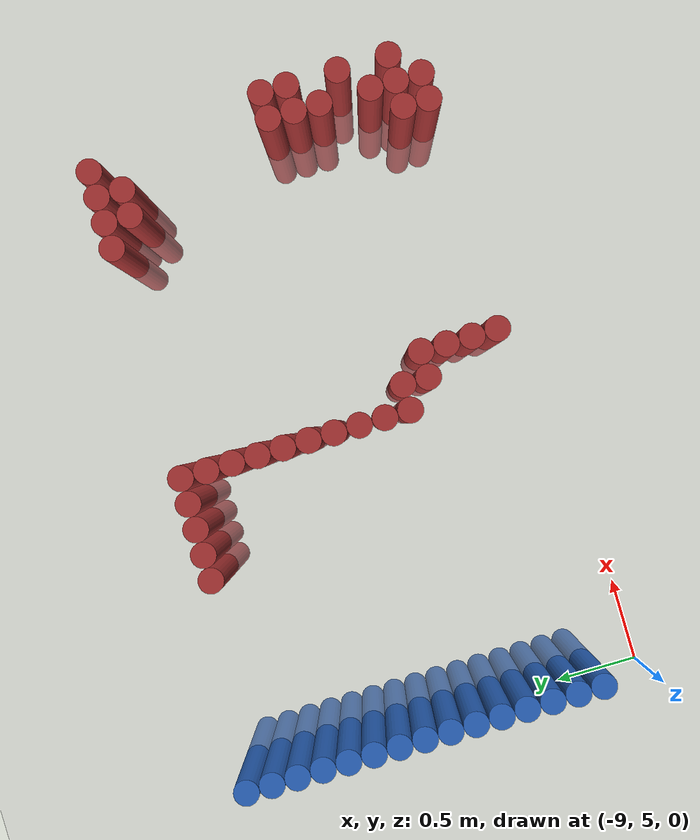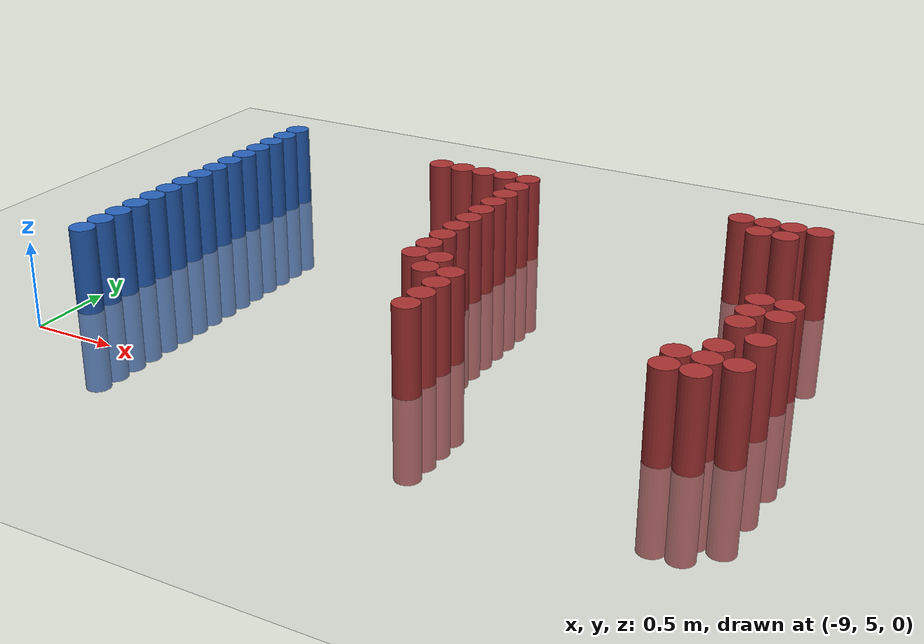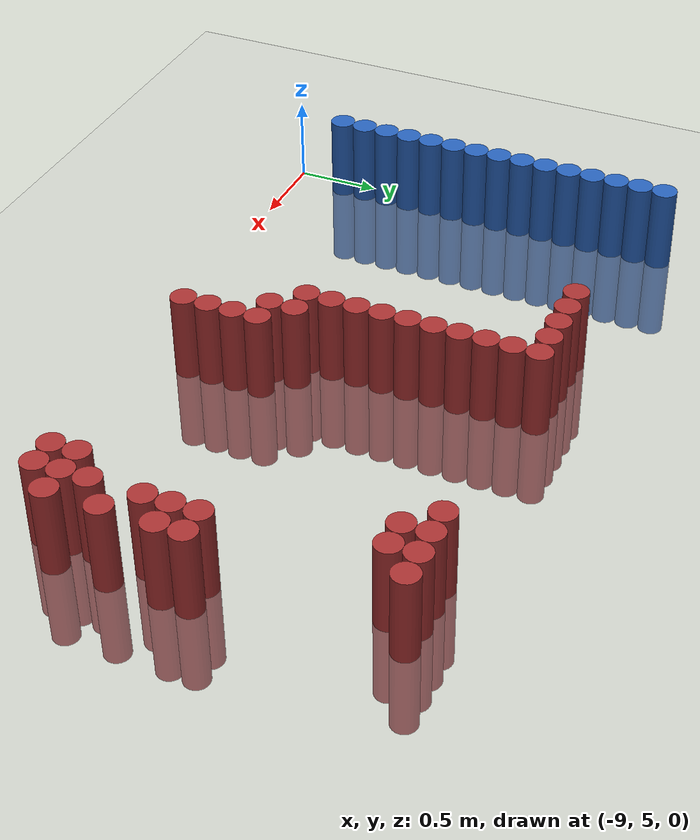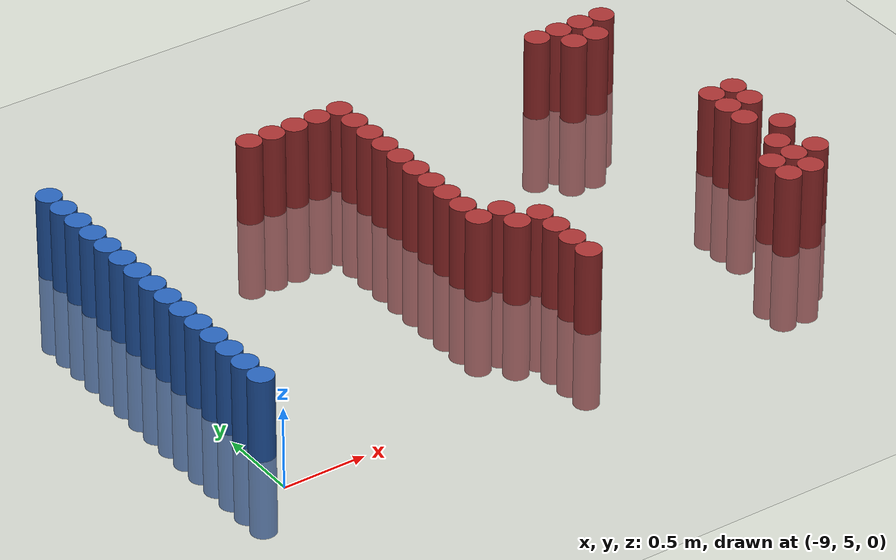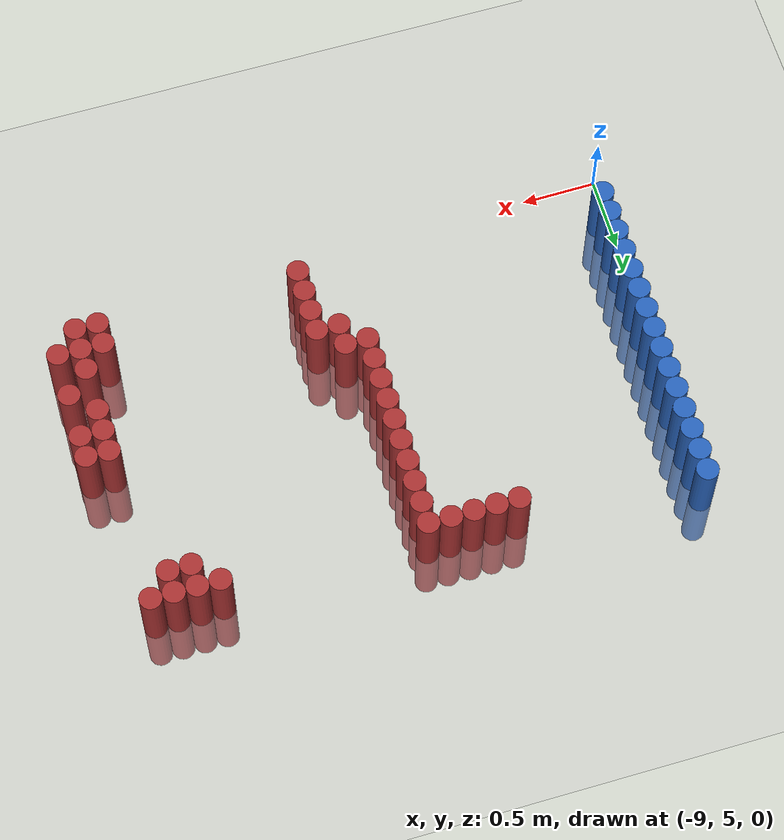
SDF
<sdf version="1.6">
 <world name="default">
  <model name="ground_plane">
   <static>1</static>
   <link name="link">
    <collision name="collision">
     <geometry><plane><normal>0 0 1</normal><size>100 100</size></plane></geometry>
     <surface><friction><ode><mu>100</mu><mu2>50</mu2></ode></friction></surface>
    </collision>
    <visual name="visual">
     <cast_shadows>0</cast_shadows>
     <geometry><plane><normal>0 0 1</normal><size>100 100</size></plane></geometry>
     <material>
      <script><uri>file://media/materials/scripts/gazebo.material</uri><name>Gazebo/Grey</name></script>
     </material>
    </visual>
   </link>
  </model>
  <model name="unit_cylinder_126">
   <static>1</static>
   <pose>-8.925000 5.325000 0.000000 0.000000 0.000000 0.000000</pose>
   <link name="link">
    <inertial>
     <mass>1</mass>
     <inertia><ixx>0.145833</ixx><ixy>0</ixy><ixz>0</ixz><iyy>0.145833</iyy><iyz>0</iyz><izz>0.125</izz></inertia>
    </inertial>
    <collision name="collision">
     <geometry><cylinder><radius>0.075000</radius><length>1</length></cylinder></geometry>
    </collision>
    <visual name="visual">
     <geometry><cylinder><radius>0.075000</radius><length>1</length></cylinder></geometry>
     <material>
      <ambient>0.152000 0.379000 0.720000 1</ambient>
      <diffuse>0.152000 0.379000 0.720000 1</diffuse>
     </material>
     <material>
      <script><name>Gazebo/Grey</name><uri>file://media/materials/scripts/gazebo.material</uri></script>
     </material>
    </visual>
   </link>
  </model>
  <model name="unit_cylinder_127">
   <static>1</static>
   <pose>-8.925000 5.475000 0.000000 0.000000 0.000000 0.000000</pose>
   <link name="link">
    <inertial>
     <mass>1</mass>
     <inertia><ixx>0.145833</ixx><ixy>0</ixy><ixz>0</ixz><iyy>0.145833</iyy><iyz>0</iyz><izz>0.125</izz></inertia>
    </inertial>
    <collision name="collision">
     <geometry><cylinder><radius>0.075000</radius><length>1</length></cylinder></geometry>
    </collision>
    <visual name="visual">
     <geometry><cylinder><radius>0.075000</radius><length>1</length></cylinder></geometry>
     <material>
      <ambient>0.152000 0.379000 0.720000 1</ambient>
      <diffuse>0.152000 0.379000 0.720000 1</diffuse>
     </material>
     <material>
      <script><name>Gazebo/Grey</name><uri>file://media/materials/scripts/gazebo.material</uri></script>
     </material>
    </visual>
   </link>
  </model>
  <model name="unit_cylinder_128">
   <static>1</static>
   <pose>-8.925000 5.625000 0.000000 0.000000 0.000000 0.000000</pose>
   <link name="link">
    <inertial>
     <mass>1</mass>
     <inertia><ixx>0.145833</ixx><ixy>0</ixy><ixz>0</ixz><iyy>0.145833</iyy><iyz>0</iyz><izz>0.125</izz></inertia>
    </inertial>
    <collision name="collision">
     <geometry><cylinder><radius>0.075000</radius><length>1</length></cylinder></geometry>
    </collision>
    <visual name="visual">
     <geometry><cylinder><radius>0.075000</radius><length>1</length></cylinder></geometry>
     <material>
      <ambient>0.152000 0.379000 0.720000 1</ambient>
      <diffuse>0.152000 0.379000 0.720000 1</diffuse>
     </material>
     <material>
      <script><name>Gazebo/Grey</name><uri>file://media/materials/scripts/gazebo.material</uri></script>
     </material>
    </visual>
   </link>
  </model>
  <model name="unit_cylinder_129">
   <static>1</static>
   <pose>-8.925000 5.775000 0.000000 0.000000 0.000000 0.000000</pose>
   <link name="link">
    <inertial>
     <mass>1</mass>
     <inertia><ixx>0.145833</ixx><ixy>0</ixy><ixz>0</ixz><iyy>0.145833</iyy><iyz>0</iyz><izz>0.125</izz></inertia>
    </inertial>
    <collision name="collision">
     <geometry><cylinder><radius>0.075000</radius><length>1</length></cylinder></geometry>
    </collision>
    <visual name="visual">
     <geometry><cylinder><radius>0.075000</radius><length>1</length></cylinder></geometry>
     <material>
      <ambient>0.152000 0.379000 0.720000 1</ambient>
      <diffuse>0.152000 0.379000 0.720000 1</diffuse>
     </material>
     <material>
      <script><name>Gazebo/Grey</name><uri>file://media/materials/scripts/gazebo.material</uri></script>
     </material>
    </visual>
   </link>
  </model>
  <model name="unit_cylinder_130">
   <static>1</static>
   <pose>-8.925000 5.925000 0.000000 0.000000 0.000000 0.000000</pose>
   <link name="link">
    <inertial>
     <mass>1</mass>
     <inertia><ixx>0.145833</ixx><ixy>0</ixy><ixz>0</ixz><iyy>0.145833</iyy><iyz>0</iyz><izz>0.125</izz></inertia>
    </inertial>
    <collision name="collision">
     <geometry><cylinder><radius>0.075000</radius><length>1</length></cylinder></geometry>
    </collision>
    <visual name="visual">
     <geometry><cylinder><radius>0.075000</radius><length>1</length></cylinder></geometry>
     <material>
      <ambient>0.152000 0.379000 0.720000 1</ambient>
      <diffuse>0.152000 0.379000 0.720000 1</diffuse>
     </material>
     <material>
      <script><name>Gazebo/Grey</name><uri>file://media/materials/scripts/gazebo.material</uri></script>
     </material>
    </visual>
   </link>
  </model>
  <model name="unit_cylinder_131">
   <static>1</static>
   <pose>-8.925000 6.075000 0.000000 0.000000 0.000000 0.000000</pose>
   <link name="link">
    <inertial>
     <mass>1</mass>
     <inertia><ixx>0.145833</ixx><ixy>0</ixy><ixz>0</ixz><iyy>0.145833</iyy><iyz>0</iyz><izz>0.125</izz></inertia>
    </inertial>
    <collision name="collision">
     <geometry><cylinder><radius>0.075000</radius><length>1</length></cylinder></geometry>
    </collision>
    <visual name="visual">
     <geometry><cylinder><radius>0.075000</radius><length>1</length></cylinder></geometry>
     <material>
      <ambient>0.152000 0.379000 0.720000 1</ambient>
      <diffuse>0.152000 0.379000 0.720000 1</diffuse>
     </material>
     <material>
      <script><name>Gazebo/Grey</name><uri>file://media/materials/scripts/gazebo.material</uri></script>
     </material>
    </visual>
   </link>
  </model>
  <model name="unit_cylinder_132">
   <static>1</static>
   <pose>-8.925000 6.225000 0.000000 0.000000 0.000000 0.000000</pose>
   <link name="link">
    <inertial>
     <mass>1</mass>
     <inertia><ixx>0.145833</ixx><ixy>0</ixy><ixz>0</ixz><iyy>0.145833</iyy><iyz>0</iyz><izz>0.125</izz></inertia>
    </inertial>
    <collision name="collision">
     <geometry><cylinder><radius>0.075000</radius><length>1</length></cylinder></geometry>
    </collision>
    <visual name="visual">
     <geometry><cylinder><radius>0.075000</radius><length>1</length></cylinder></geometry>
     <material>
      <ambient>0.152000 0.379000 0.720000 1</ambient>
      <diffuse>0.152000 0.379000 0.720000 1</diffuse>
     </material>
     <material>
      <script><name>Gazebo/Grey</name><uri>file://media/materials/scripts/gazebo.material</uri></script>
     </material>
    </visual>
   </link>
  </model>
  <model name="unit_cylinder_133">
   <static>1</static>
   <pose>-8.925000 6.375000 0.000000 0.000000 0.000000 0.000000</pose>
   <link name="link">
    <inertial>
     <mass>1</mass>
     <inertia><ixx>0.145833</ixx><ixy>0</ixy><ixz>0</ixz><iyy>0.145833</iyy><iyz>0</iyz><izz>0.125</izz></inertia>
    </inertial>
    <collision name="collision">
     <geometry><cylinder><radius>0.075000</radius><length>1</length></cylinder></geometry>
    </collision>
    <visual name="visual">
     <geometry><cylinder><radius>0.075000</radius><length>1</length></cylinder></geometry>
     <material>
      <ambient>0.152000 0.379000 0.720000 1</ambient>
      <diffuse>0.152000 0.379000 0.720000 1</diffuse>
     </material>
     <material>
      <script><name>Gazebo/Grey</name><uri>file://media/materials/scripts/gazebo.material</uri></script>
     </material>
    </visual>
   </link>
  </model>
  <model name="unit_cylinder_134">
   <static>1</static>
   <pose>-8.925000 6.525000 0.000000 0.000000 0.000000 0.000000</pose>
   <link name="link">
    <inertial>
     <mass>1</mass>
     <inertia><ixx>0.145833</ixx><ixy>0</ixy><ixz>0</ixz><iyy>0.145833</iyy><iyz>0</iyz><izz>0.125</izz></inertia>
    </inertial>
    <collision name="collision">
     <geometry><cylinder><radius>0.075000</radius><length>1</length></cylinder></geometry>
    </collision>
    <visual name="visual">
     <geometry><cylinder><radius>0.075000</radius><length>1</length></cylinder></geometry>
     <material>
      <ambient>0.152000 0.379000 0.720000 1</ambient>
      <diffuse>0.152000 0.379000 0.720000 1</diffuse>
     </material>
     <material>
      <script><name>Gazebo/Grey</name><uri>file://media/materials/scripts/gazebo.material</uri></script>
     </material>
    </visual>
   </link>
  </model>
  <model name="unit_cylinder_135">
   <static>1</static>
   <pose>-8.925000 6.675000 0.000000 0.000000 0.000000 0.000000</pose>
   <link name="link">
    <inertial>
     <mass>1</mass>
     <inertia><ixx>0.145833</ixx><ixy>0</ixy><ixz>0</ixz><iyy>0.145833</iyy><iyz>0</iyz><izz>0.125</izz></inertia>
    </inertial>
    <collision name="collision">
     <geometry><cylinder><radius>0.075000</radius><length>1</length></cylinder></geometry>
    </collision>
    <visual name="visual">
     <geometry><cylinder><radius>0.075000</radius><length>1</length></cylinder></geometry>
     <material>
      <ambient>0.152000 0.379000 0.720000 1</ambient>
      <diffuse>0.152000 0.379000 0.720000 1</diffuse>
     </material>
     <material>
      <script><name>Gazebo/Grey</name><uri>file://media/materials/scripts/gazebo.material</uri></script>
     </material>
    </visual>
   </link>
  </model>
  <model name="unit_cylinder_136">
   <static>1</static>
   <pose>-8.925000 6.825000 0.000000 0.000000 0.000000 0.000000</pose>
   <link name="link">
    <inertial>
     <mass>1</mass>
     <inertia><ixx>0.145833</ixx><ixy>0</ixy><ixz>0</ixz><iyy>0.145833</iyy><iyz>0</iyz><izz>0.125</izz></inertia>
    </inertial>
    <collision name="collision">
     <geometry><cylinder><radius>0.075000</radius><length>1</length></cylinder></geometry>
    </collision>
    <visual name="visual">
     <geometry><cylinder><radius>0.075000</radius><length>1</length></cylinder></geometry>
     <material>
      <ambient>0.152000 0.379000 0.720000 1</ambient>
      <diffuse>0.152000 0.379000 0.720000 1</diffuse>
     </material>
     <material>
      <script><name>Gazebo/Grey</name><uri>file://media/materials/scripts/gazebo.material</uri></script>
     </material>
    </visual>
   </link>
  </model>
  <model name="unit_cylinder_137">
   <static>1</static>
   <pose>-8.925000 6.975000 0.000000 0.000000 0.000000 0.000000</pose>
   <link name="link">
    <inertial>
     <mass>1</mass>
     <inertia><ixx>0.145833</ixx><ixy>0</ixy><ixz>0</ixz><iyy>0.145833</iyy><iyz>0</iyz><izz>0.125</izz></inertia>
    </inertial>
    <collision name="collision">
     <geometry><cylinder><radius>0.075000</radius><length>1</length></cylinder></geometry>
    </collision>
    <visual name="visual">
     <geometry><cylinder><radius>0.075000</radius><length>1</length></cylinder></geometry>
     <material>
      <ambient>0.152000 0.379000 0.720000 1</ambient>
      <diffuse>0.152000 0.379000 0.720000 1</diffuse>
     </material>
     <material>
      <script><name>Gazebo/Grey</name><uri>file://media/materials/scripts/gazebo.material</uri></script>
     </material>
    </visual>
   </link>
  </model>
  <model name="unit_cylinder_138">
   <static>1</static>
   <pose>-8.925000 7.125000 0.000000 0.000000 0.000000 0.000000</pose>
   <link name="link">
    <inertial>
     <mass>1</mass>
     <inertia><ixx>0.145833</ixx><ixy>0</ixy><ixz>0</ixz><iyy>0.145833</iyy><iyz>0</iyz><izz>0.125</izz></inertia>
    </inertial>
    <collision name="collision">
     <geometry><cylinder><radius>0.075000</radius><length>1</length></cylinder></geometry>
    </collision>
    <visual name="visual">
     <geometry><cylinder><radius>0.075000</radius><length>1</length></cylinder></geometry>
     <material>
      <ambient>0.152000 0.379000 0.720000 1</ambient>
      <diffuse>0.152000 0.379000 0.720000 1</diffuse>
     </material>
     <material>
      <script><name>Gazebo/Grey</name><uri>file://media/materials/scripts/gazebo.material</uri></script>
     </material>
    </visual>
   </link>
  </model>
  <model name="unit_cylinder_139">
   <static>1</static>
   <pose>-8.925000 7.275000 0.000000 0.000000 0.000000 0.000000</pose>
   <link name="link">
    <inertial>
     <mass>1</mass>
     <inertia><ixx>0.145833</ixx><ixy>0</ixy><ixz>0</ixz><iyy>0.145833</iyy><iyz>0</iyz><izz>0.125</izz></inertia>
    </inertial>
    <collision name="collision">
     <geometry><cylinder><radius>0.075000</radius><length>1</length></cylinder></geometry>
    </collision>
    <visual name="visual">
     <geometry><cylinder><radius>0.075000</radius><length>1</length></cylinder></geometry>
     <material>
      <ambient>0.152000 0.379000 0.720000 1</ambient>
      <diffuse>0.152000 0.379000 0.720000 1</diffuse>
     </material>
     <material>
      <script><name>Gazebo/Grey</name><uri>file://media/materials/scripts/gazebo.material</uri></script>
     </material>
    </visual>
   </link>
  </model>
  <model name="unit_cylinder_140">
   <static>1</static>
   <pose>-8.925000 7.425000 0.000000 0.000000 0.000000 0.000000</pose>
   <link name="link">
    <inertial>
     <mass>1</mass>
     <inertia><ixx>0.145833</ixx><ixy>0</ixy><ixz>0</ixz><iyy>0.145833</iyy><iyz>0</iyz><izz>0.125</izz></inertia>
    </inertial>
    <collision name="collision">
     <geometry><cylinder><radius>0.075000</radius><length>1</length></cylinder></geometry>
    </collision>
    <visual name="visual">
     <geometry><cylinder><radius>0.075000</radius><length>1</length></cylinder></geometry>
     <material>
      <ambient>0.152000 0.379000 0.720000 1</ambient>
      <diffuse>0.152000 0.379000 0.720000 1</diffuse>
     </material>
     <material>
      <script><name>Gazebo/Grey</name><uri>file://media/materials/scripts/gazebo.material</uri></script>
     </material>
    </visual>
   </link>
  </model>
  <model name="unit_cylinder_170">
   <static>1</static>
   <pose>-7.725000 7.275000 0.000000 0.000000 0.000000 0.000000</pose>
   <link name="link">
    <inertial>
     <mass>1</mass>
     <inertia><ixx>0.145833</ixx><ixy>0</ixy><ixz>0</ixz><iyy>0.145833</iyy><iyz>0</iyz><izz>0.125</izz></inertia>
    </inertial>
    <collision name="collision">
     <geometry><cylinder><radius>0.075000</radius><length>1</length></cylinder></geometry>
    </collision>
    <visual name="visual">
     <geometry><cylinder><radius>0.075000</radius><length>1</length></cylinder></geometry>
     <material>
      <ambient>0.648000 0.192000 0.192000 1</ambient>
      <diffuse>0.648000 0.192000 0.192000 1</diffuse>
     </material>
     <material>
      <script><name>Gazebo/Grey</name><uri>file://media/materials/scripts/gazebo.material</uri></script>
     </material>
    </visual>
   </link>
  </model>
  <model name="unit_cylinder_187">
   <static>1</static>
   <pose>-7.575000 7.275000 0.000000 0.000000 0.000000 0.000000</pose>
   <link name="link">
    <inertial>
     <mass>1</mass>
     <inertia><ixx>0.145833</ixx><ixy>0</ixy><ixz>0</ixz><iyy>0.145833</iyy><iyz>0</iyz><izz>0.125</izz></inertia>
    </inertial>
    <collision name="collision">
     <geometry><cylinder><radius>0.075000</radius><length>1</length></cylinder></geometry>
    </collision>
    <visual name="visual">
     <geometry><cylinder><radius>0.075000</radius><length>1</length></cylinder></geometry>
     <material>
      <ambient>0.648000 0.192000 0.192000 1</ambient>
      <diffuse>0.648000 0.192000 0.192000 1</diffuse>
     </material>
     <material>
      <script><name>Gazebo/Grey</name><uri>file://media/materials/scripts/gazebo.material</uri></script>
     </material>
    </visual>
   </link>
  </model>
  <model name="unit_cylinder_189">
   <static>1</static>
   <pose>-7.425000 7.275000 0.000000 0.000000 0.000000 0.000000</pose>
   <link name="link">
    <inertial>
     <mass>1</mass>
     <inertia><ixx>0.145833</ixx><ixy>0</ixy><ixz>0</ixz><iyy>0.145833</iyy><iyz>0</iyz><izz>0.125</izz></inertia>
    </inertial>
    <collision name="collision">
     <geometry><cylinder><radius>0.075000</radius><length>1</length></cylinder></geometry>
    </collision>
    <visual name="visual">
     <geometry><cylinder><radius>0.075000</radius><length>1</length></cylinder></geometry>
     <material>
      <ambient>0.648000 0.192000 0.192000 1</ambient>
      <diffuse>0.648000 0.192000 0.192000 1</diffuse>
     </material>
     <material>
      <script><name>Gazebo/Grey</name><uri>file://media/materials/scripts/gazebo.material</uri></script>
     </material>
    </visual>
   </link>
  </model>
  <model name="unit_cylinder_191">
   <static>1</static>
   <pose>-7.275000 7.275000 0.000000 0.000000 0.000000 0.000000</pose>
   <link name="link">
    <inertial>
     <mass>1</mass>
     <inertia><ixx>0.145833</ixx><ixy>0</ixy><ixz>0</ixz><iyy>0.145833</iyy><iyz>0</iyz><izz>0.125</izz></inertia>
    </inertial>
    <collision name="collision">
     <geometry><cylinder><radius>0.075000</radius><length>1</length></cylinder></geometry>
    </collision>
    <visual name="visual">
     <geometry><cylinder><radius>0.075000</radius><length>1</length></cylinder></geometry>
     <material>
      <ambient>0.648000 0.192000 0.192000 1</ambient>
      <diffuse>0.648000 0.192000 0.192000 1</diffuse>
     </material>
     <material>
      <script><name>Gazebo/Grey</name><uri>file://media/materials/scripts/gazebo.material</uri></script>
     </material>
    </visual>
   </link>
  </model>
  <model name="unit_cylinder_193">
   <static>1</static>
   <pose>-7.125000 5.925000 0.000000 0.000000 0.000000 0.000000</pose>
   <link name="link">
    <inertial>
     <mass>1</mass>
     <inertia><ixx>0.145833</ixx><ixy>0</ixy><ixz>0</ixz><iyy>0.145833</iyy><iyz>0</iyz><izz>0.125</izz></inertia>
    </inertial>
    <collision name="collision">
     <geometry><cylinder><radius>0.075000</radius><length>1</length></cylinder></geometry>
    </collision>
    <visual name="visual">
     <geometry><cylinder><radius>0.075000</radius><length>1</length></cylinder></geometry>
     <material>
      <ambient>0.648000 0.192000 0.192000 1</ambient>
      <diffuse>0.648000 0.192000 0.192000 1</diffuse>
     </material>
     <material>
      <script><name>Gazebo/Grey</name><uri>file://media/materials/scripts/gazebo.material</uri></script>
     </material>
    </visual>
   </link>
  </model>
  <model name="unit_cylinder_194">
   <static>1</static>
   <pose>-7.125000 6.075000 0.000000 0.000000 0.000000 0.000000</pose>
   <link name="link">
    <inertial>
     <mass>1</mass>
     <inertia><ixx>0.145833</ixx><ixy>0</ixy><ixz>0</ixz><iyy>0.145833</iyy><iyz>0</iyz><izz>0.125</izz></inertia>
    </inertial>
    <collision name="collision">
     <geometry><cylinder><radius>0.075000</radius><length>1</length></cylinder></geometry>
    </collision>
    <visual name="visual">
     <geometry><cylinder><radius>0.075000</radius><length>1</length></cylinder></geometry>
     <material>
      <ambient>0.648000 0.192000 0.192000 1</ambient>
      <diffuse>0.648000 0.192000 0.192000 1</diffuse>
     </material>
     <material>
      <script><name>Gazebo/Grey</name><uri>file://media/materials/scripts/gazebo.material</uri></script>
     </material>
    </visual>
   </link>
  </model>
  <model name="unit_cylinder_195">
   <static>1</static>
   <pose>-7.125000 6.225000 0.000000 0.000000 0.000000 0.000000</pose>
   <link name="link">
    <inertial>
     <mass>1</mass>
     <inertia><ixx>0.145833</ixx><ixy>0</ixy><ixz>0</ixz><iyy>0.145833</iyy><iyz>0</iyz><izz>0.125</izz></inertia>
    </inertial>
    <collision name="collision">
     <geometry><cylinder><radius>0.075000</radius><length>1</length></cylinder></geometry>
    </collision>
    <visual name="visual">
     <geometry><cylinder><radius>0.075000</radius><length>1</length></cylinder></geometry>
     <material>
      <ambient>0.648000 0.192000 0.192000 1</ambient>
      <diffuse>0.648000 0.192000 0.192000 1</diffuse>
     </material>
     <material>
      <script><name>Gazebo/Grey</name><uri>file://media/materials/scripts/gazebo.material</uri></script>
     </material>
    </visual>
   </link>
  </model>
  <model name="unit_cylinder_196">
   <static>1</static>
   <pose>-7.125000 6.375000 0.000000 0.000000 0.000000 0.000000</pose>
   <link name="link">
    <inertial>
     <mass>1</mass>
     <inertia><ixx>0.145833</ixx><ixy>0</ixy><ixz>0</ixz><iyy>0.145833</iyy><iyz>0</iyz><izz>0.125</izz></inertia>
    </inertial>
    <collision name="collision">
     <geometry><cylinder><radius>0.075000</radius><length>1</length></cylinder></geometry>
    </collision>
    <visual name="visual">
     <geometry><cylinder><radius>0.075000</radius><length>1</length></cylinder></geometry>
     <material>
      <ambient>0.648000 0.192000 0.192000 1</ambient>
      <diffuse>0.648000 0.192000 0.192000 1</diffuse>
     </material>
     <material>
      <script><name>Gazebo/Grey</name><uri>file://media/materials/scripts/gazebo.material</uri></script>
     </material>
    </visual>
   </link>
  </model>
  <model name="unit_cylinder_197">
   <static>1</static>
   <pose>-7.125000 6.525000 0.000000 0.000000 0.000000 0.000000</pose>
   <link name="link">
    <inertial>
     <mass>1</mass>
     <inertia><ixx>0.145833</ixx><ixy>0</ixy><ixz>0</ixz><iyy>0.145833</iyy><iyz>0</iyz><izz>0.125</izz></inertia>
    </inertial>
    <collision name="collision">
     <geometry><cylinder><radius>0.075000</radius><length>1</length></cylinder></geometry>
    </collision>
    <visual name="visual">
     <geometry><cylinder><radius>0.075000</radius><length>1</length></cylinder></geometry>
     <material>
      <ambient>0.648000 0.192000 0.192000 1</ambient>
      <diffuse>0.648000 0.192000 0.192000 1</diffuse>
     </material>
     <material>
      <script><name>Gazebo/Grey</name><uri>file://media/materials/scripts/gazebo.material</uri></script>
     </material>
    </visual>
   </link>
  </model>
  <model name="unit_cylinder_198">
   <static>1</static>
   <pose>-7.125000 6.675000 0.000000 0.000000 0.000000 0.000000</pose>
   <link name="link">
    <inertial>
     <mass>1</mass>
     <inertia><ixx>0.145833</ixx><ixy>0</ixy><ixz>0</ixz><iyy>0.145833</iyy><iyz>0</iyz><izz>0.125</izz></inertia>
    </inertial>
    <collision name="collision">
     <geometry><cylinder><radius>0.075000</radius><length>1</length></cylinder></geometry>
    </collision>
    <visual name="visual">
     <geometry><cylinder><radius>0.075000</radius><length>1</length></cylinder></geometry>
     <material>
      <ambient>0.648000 0.192000 0.192000 1</ambient>
      <diffuse>0.648000 0.192000 0.192000 1</diffuse>
     </material>
     <material>
      <script><name>Gazebo/Grey</name><uri>file://media/materials/scripts/gazebo.material</uri></script>
     </material>
    </visual>
   </link>
  </model>
  <model name="unit_cylinder_199">
   <static>1</static>
   <pose>-7.125000 6.825000 0.000000 0.000000 0.000000 0.000000</pose>
   <link name="link">
    <inertial>
     <mass>1</mass>
     <inertia><ixx>0.145833</ixx><ixy>0</ixy><ixz>0</ixz><iyy>0.145833</iyy><iyz>0</iyz><izz>0.125</izz></inertia>
    </inertial>
    <collision name="collision">
     <geometry><cylinder><radius>0.075000</radius><length>1</length></cylinder></geometry>
    </collision>
    <visual name="visual">
     <geometry><cylinder><radius>0.075000</radius><length>1</length></cylinder></geometry>
     <material>
      <ambient>0.648000 0.192000 0.192000 1</ambient>
      <diffuse>0.648000 0.192000 0.192000 1</diffuse>
     </material>
     <material>
      <script><name>Gazebo/Grey</name><uri>file://media/materials/scripts/gazebo.material</uri></script>
     </material>
    </visual>
   </link>
  </model>
  <model name="unit_cylinder_200">
   <static>1</static>
   <pose>-7.125000 6.975000 0.000000 0.000000 0.000000 0.000000</pose>
   <link name="link">
    <inertial>
     <mass>1</mass>
     <inertia><ixx>0.145833</ixx><ixy>0</ixy><ixz>0</ixz><iyy>0.145833</iyy><iyz>0</iyz><izz>0.125</izz></inertia>
    </inertial>
    <collision name="collision">
     <geometry><cylinder><radius>0.075000</radius><length>1</length></cylinder></geometry>
    </collision>
    <visual name="visual">
     <geometry><cylinder><radius>0.075000</radius><length>1</length></cylinder></geometry>
     <material>
      <ambient>0.648000 0.192000 0.192000 1</ambient>
      <diffuse>0.648000 0.192000 0.192000 1</diffuse>
     </material>
     <material>
      <script><name>Gazebo/Grey</name><uri>file://media/materials/scripts/gazebo.material</uri></script>
     </material>
    </visual>
   </link>
  </model>
  <model name="unit_cylinder_201">
   <static>1</static>
   <pose>-7.125000 7.125000 0.000000 0.000000 0.000000 0.000000</pose>
   <link name="link">
    <inertial>
     <mass>1</mass>
     <inertia><ixx>0.145833</ixx><ixy>0</ixy><ixz>0</ixz><iyy>0.145833</iyy><iyz>0</iyz><izz>0.125</izz></inertia>
    </inertial>
    <collision name="collision">
     <geometry><cylinder><radius>0.075000</radius><length>1</length></cylinder></geometry>
    </collision>
    <visual name="visual">
     <geometry><cylinder><radius>0.075000</radius><length>1</length></cylinder></geometry>
     <material>
      <ambient>0.648000 0.192000 0.192000 1</ambient>
      <diffuse>0.648000 0.192000 0.192000 1</diffuse>
     </material>
     <material>
      <script><name>Gazebo/Grey</name><uri>file://media/materials/scripts/gazebo.material</uri></script>
     </material>
    </visual>
   </link>
  </model>
  <model name="unit_cylinder_202">
   <static>1</static>
   <pose>-7.125000 7.275000 0.000000 0.000000 0.000000 0.000000</pose>
   <link name="link">
    <inertial>
     <mass>1</mass>
     <inertia><ixx>0.145833</ixx><ixy>0</ixy><ixz>0</ixz><iyy>0.145833</iyy><iyz>0</iyz><izz>0.125</izz></inertia>
    </inertial>
    <collision name="collision">
     <geometry><cylinder><radius>0.075000</radius><length>1</length></cylinder></geometry>
    </collision>
    <visual name="visual">
     <geometry><cylinder><radius>0.075000</radius><length>1</length></cylinder></geometry>
     <material>
      <ambient>0.648000 0.192000 0.192000 1</ambient>
      <diffuse>0.648000 0.192000 0.192000 1</diffuse>
     </material>
     <material>
      <script><name>Gazebo/Grey</name><uri>file://media/materials/scripts/gazebo.material</uri></script>
     </material>
    </visual>
   </link>
  </model>
  <model name="unit_cylinder_204">
   <static>1</static>
   <pose>-6.975000 5.775000 0.000000 0.000000 0.000000 0.000000</pose>
   <link name="link">
    <inertial>
     <mass>1</mass>
     <inertia><ixx>0.145833</ixx><ixy>0</ixy><ixz>0</ixz><iyy>0.145833</iyy><iyz>0</iyz><izz>0.125</izz></inertia>
    </inertial>
    <collision name="collision">
     <geometry><cylinder><radius>0.075000</radius><length>1</length></cylinder></geometry>
    </collision>
    <visual name="visual">
     <geometry><cylinder><radius>0.075000</radius><length>1</length></cylinder></geometry>
     <material>
      <ambient>0.648000 0.192000 0.192000 1</ambient>
      <diffuse>0.648000 0.192000 0.192000 1</diffuse>
     </material>
     <material>
      <script><name>Gazebo/Grey</name><uri>file://media/materials/scripts/gazebo.material</uri></script>
     </material>
    </visual>
   </link>
  </model>
  <model name="unit_cylinder_205">
   <static>1</static>
   <pose>-6.975000 5.925000 0.000000 0.000000 0.000000 0.000000</pose>
   <link name="link">
    <inertial>
     <mass>1</mass>
     <inertia><ixx>0.145833</ixx><ixy>0</ixy><ixz>0</ixz><iyy>0.145833</iyy><iyz>0</iyz><izz>0.125</izz></inertia>
    </inertial>
    <collision name="collision">
     <geometry><cylinder><radius>0.075000</radius><length>1</length></cylinder></geometry>
    </collision>
    <visual name="visual">
     <geometry><cylinder><radius>0.075000</radius><length>1</length></cylinder></geometry>
     <material>
      <ambient>0.648000 0.192000 0.192000 1</ambient>
      <diffuse>0.648000 0.192000 0.192000 1</diffuse>
     </material>
     <material>
      <script><name>Gazebo/Grey</name><uri>file://media/materials/scripts/gazebo.material</uri></script>
     </material>
    </visual>
   </link>
  </model>
  <model name="unit_cylinder_207">
   <static>1</static>
   <pose>-6.825000 5.325000 0.000000 0.000000 0.000000 0.000000</pose>
   <link name="link">
    <inertial>
     <mass>1</mass>
     <inertia><ixx>0.145833</ixx><ixy>0</ixy><ixz>0</ixz><iyy>0.145833</iyy><iyz>0</iyz><izz>0.125</izz></inertia>
    </inertial>
    <collision name="collision">
     <geometry><cylinder><radius>0.075000</radius><length>1</length></cylinder></geometry>
    </collision>
    <visual name="visual">
     <geometry><cylinder><radius>0.075000</radius><length>1</length></cylinder></geometry>
     <material>
      <ambient>0.648000 0.192000 0.192000 1</ambient>
      <diffuse>0.648000 0.192000 0.192000 1</diffuse>
     </material>
     <material>
      <script><name>Gazebo/Grey</name><uri>file://media/materials/scripts/gazebo.material</uri></script>
     </material>
    </visual>
   </link>
  </model>
  <model name="unit_cylinder_208">
   <static>1</static>
   <pose>-6.825000 5.475000 0.000000 0.000000 0.000000 0.000000</pose>
   <link name="link">
    <inertial>
     <mass>1</mass>
     <inertia><ixx>0.145833</ixx><ixy>0</ixy><ixz>0</ixz><iyy>0.145833</iyy><iyz>0</iyz><izz>0.125</izz></inertia>
    </inertial>
    <collision name="collision">
     <geometry><cylinder><radius>0.075000</radius><length>1</length></cylinder></geometry>
    </collision>
    <visual name="visual">
     <geometry><cylinder><radius>0.075000</radius><length>1</length></cylinder></geometry>
     <material>
      <ambient>0.648000 0.192000 0.192000 1</ambient>
      <diffuse>0.648000 0.192000 0.192000 1</diffuse>
     </material>
     <material>
      <script><name>Gazebo/Grey</name><uri>file://media/materials/scripts/gazebo.material</uri></script>
     </material>
    </visual>
   </link>
  </model>
  <model name="unit_cylinder_209">
   <static>1</static>
   <pose>-6.825000 5.625000 0.000000 0.000000 0.000000 0.000000</pose>
   <link name="link">
    <inertial>
     <mass>1</mass>
     <inertia><ixx>0.145833</ixx><ixy>0</ixy><ixz>0</ixz><iyy>0.145833</iyy><iyz>0</iyz><izz>0.125</izz></inertia>
    </inertial>
    <collision name="collision">
     <geometry><cylinder><radius>0.075000</radius><length>1</length></cylinder></geometry>
    </collision>
    <visual name="visual">
     <geometry><cylinder><radius>0.075000</radius><length>1</length></cylinder></geometry>
     <material>
      <ambient>0.648000 0.192000 0.192000 1</ambient>
      <diffuse>0.648000 0.192000 0.192000 1</diffuse>
     </material>
     <material>
      <script><name>Gazebo/Grey</name><uri>file://media/materials/scripts/gazebo.material</uri></script>
     </material>
    </visual>
   </link>
  </model>
  <model name="unit_cylinder_210">
   <static>1</static>
   <pose>-6.825000 5.775000 0.000000 0.000000 0.000000 0.000000</pose>
   <link name="link">
    <inertial>
     <mass>1</mass>
     <inertia><ixx>0.145833</ixx><ixy>0</ixy><ixz>0</ixz><iyy>0.145833</iyy><iyz>0</iyz><izz>0.125</izz></inertia>
    </inertial>
    <collision name="collision">
     <geometry><cylinder><radius>0.075000</radius><length>1</length></cylinder></geometry>
    </collision>
    <visual name="visual">
     <geometry><cylinder><radius>0.075000</radius><length>1</length></cylinder></geometry>
     <material>
      <ambient>0.648000 0.192000 0.192000 1</ambient>
      <diffuse>0.648000 0.192000 0.192000 1</diffuse>
     </material>
     <material>
      <script><name>Gazebo/Grey</name><uri>file://media/materials/scripts/gazebo.material</uri></script>
     </material>
    </visual>
   </link>
  </model>
  <model name="unit_cylinder_215">
   <static>1</static>
   <pose>-5.775000 7.275000 0.000000 0.000000 0.000000 0.000000</pose>
   <link name="link">
    <inertial>
     <mass>1</mass>
     <inertia><ixx>0.145833</ixx><ixy>0</ixy><ixz>0</ixz><iyy>0.145833</iyy><iyz>0</iyz><izz>0.125</izz></inertia>
    </inertial>
    <collision name="collision">
     <geometry><cylinder><radius>0.075000</radius><length>1</length></cylinder></geometry>
    </collision>
    <visual name="visual">
     <geometry><cylinder><radius>0.075000</radius><length>1</length></cylinder></geometry>
     <material>
      <ambient>0.648000 0.192000 0.192000 1</ambient>
      <diffuse>0.648000 0.192000 0.192000 1</diffuse>
     </material>
     <material>
      <script><name>Gazebo/Grey</name><uri>file://media/materials/scripts/gazebo.material</uri></script>
     </material>
    </visual>
   </link>
  </model>
  <model name="unit_cylinder_218">
   <static>1</static>
   <pose>-5.625000 7.125000 0.000000 0.000000 0.000000 0.000000</pose>
   <link name="link">
    <inertial>
     <mass>1</mass>
     <inertia><ixx>0.145833</ixx><ixy>0</ixy><ixz>0</ixz><iyy>0.145833</iyy><iyz>0</iyz><izz>0.125</izz></inertia>
    </inertial>
    <collision name="collision">
     <geometry><cylinder><radius>0.075000</radius><length>1</length></cylinder></geometry>
    </collision>
    <visual name="visual">
     <geometry><cylinder><radius>0.075000</radius><length>1</length></cylinder></geometry>
     <material>
      <ambient>0.648000 0.192000 0.192000 1</ambient>
      <diffuse>0.648000 0.192000 0.192000 1</diffuse>
     </material>
     <material>
      <script><name>Gazebo/Grey</name><uri>file://media/materials/scripts/gazebo.material</uri></script>
     </material>
    </visual>
   </link>
  </model>
  <model name="unit_cylinder_219">
   <static>1</static>
   <pose>-5.625000 7.275000 0.000000 0.000000 0.000000 0.000000</pose>
   <link name="link">
    <inertial>
     <mass>1</mass>
     <inertia><ixx>0.145833</ixx><ixy>0</ixy><ixz>0</ixz><iyy>0.145833</iyy><iyz>0</iyz><izz>0.125</izz></inertia>
    </inertial>
    <collision name="collision">
     <geometry><cylinder><radius>0.075000</radius><length>1</length></cylinder></geometry>
    </collision>
    <visual name="visual">
     <geometry><cylinder><radius>0.075000</radius><length>1</length></cylinder></geometry>
     <material>
      <ambient>0.648000 0.192000 0.192000 1</ambient>
      <diffuse>0.648000 0.192000 0.192000 1</diffuse>
     </material>
     <material>
      <script><name>Gazebo/Grey</name><uri>file://media/materials/scripts/gazebo.material</uri></script>
     </material>
    </visual>
   </link>
  </model>
  <model name="unit_cylinder_225">
   <static>1</static>
   <pose>-5.475000 5.325000 0.000000 0.000000 0.000000 0.000000</pose>
   <link name="link">
    <inertial>
     <mass>1</mass>
     <inertia><ixx>0.145833</ixx><ixy>0</ixy><ixz>0</ixz><iyy>0.145833</iyy><iyz>0</iyz><izz>0.125</izz></inertia>
    </inertial>
    <collision name="collision">
     <geometry><cylinder><radius>0.075000</radius><length>1</length></cylinder></geometry>
    </collision>
    <visual name="visual">
     <geometry><cylinder><radius>0.075000</radius><length>1</length></cylinder></geometry>
     <material>
      <ambient>0.648000 0.192000 0.192000 1</ambient>
      <diffuse>0.648000 0.192000 0.192000 1</diffuse>
     </material>
     <material>
      <script><name>Gazebo/Grey</name><uri>file://media/materials/scripts/gazebo.material</uri></script>
     </material>
    </visual>
   </link>
  </model>
  <model name="unit_cylinder_226">
   <static>1</static>
   <pose>-5.475000 5.475000 0.000000 0.000000 0.000000 0.000000</pose>
   <link name="link">
    <inertial>
     <mass>1</mass>
     <inertia><ixx>0.145833</ixx><ixy>0</ixy><ixz>0</ixz><iyy>0.145833</iyy><iyz>0</iyz><izz>0.125</izz></inertia>
    </inertial>
    <collision name="collision">
     <geometry><cylinder><radius>0.075000</radius><length>1</length></cylinder></geometry>
    </collision>
    <visual name="visual">
     <geometry><cylinder><radius>0.075000</radius><length>1</length></cylinder></geometry>
     <material>
      <ambient>0.648000 0.192000 0.192000 1</ambient>
      <diffuse>0.648000 0.192000 0.192000 1</diffuse>
     </material>
     <material>
      <script><name>Gazebo/Grey</name><uri>file://media/materials/scripts/gazebo.material</uri></script>
     </material>
    </visual>
   </link>
  </model>
  <model name="unit_cylinder_227">
   <static>1</static>
   <pose>-5.475000 7.125000 0.000000 0.000000 0.000000 0.000000</pose>
   <link name="link">
    <inertial>
     <mass>1</mass>
     <inertia><ixx>0.145833</ixx><ixy>0</ixy><ixz>0</ixz><iyy>0.145833</iyy><iyz>0</iyz><izz>0.125</izz></inertia>
    </inertial>
    <collision name="collision">
     <geometry><cylinder><radius>0.075000</radius><length>1</length></cylinder></geometry>
    </collision>
    <visual name="visual">
     <geometry><cylinder><radius>0.075000</radius><length>1</length></cylinder></geometry>
     <material>
      <ambient>0.648000 0.192000 0.192000 1</ambient>
      <diffuse>0.648000 0.192000 0.192000 1</diffuse>
     </material>
     <material>
      <script><name>Gazebo/Grey</name><uri>file://media/materials/scripts/gazebo.material</uri></script>
     </material>
    </visual>
   </link>
  </model>
  <model name="unit_cylinder_228">
   <static>1</static>
   <pose>-5.475000 7.275000 0.000000 0.000000 0.000000 0.000000</pose>
   <link name="link">
    <inertial>
     <mass>1</mass>
     <inertia><ixx>0.145833</ixx><ixy>0</ixy><ixz>0</ixz><iyy>0.145833</iyy><iyz>0</iyz><izz>0.125</izz></inertia>
    </inertial>
    <collision name="collision">
     <geometry><cylinder><radius>0.075000</radius><length>1</length></cylinder></geometry>
    </collision>
    <visual name="visual">
     <geometry><cylinder><radius>0.075000</radius><length>1</length></cylinder></geometry>
     <material>
      <ambient>0.648000 0.192000 0.192000 1</ambient>
      <diffuse>0.648000 0.192000 0.192000 1</diffuse>
     </material>
     <material>
      <script><name>Gazebo/Grey</name><uri>file://media/materials/scripts/gazebo.material</uri></script>
     </material>
    </visual>
   </link>
  </model>
  <model name="unit_cylinder_233">
   <static>1</static>
   <pose>-5.325000 5.325000 0.000000 0.000000 0.000000 0.000000</pose>
   <link name="link">
    <inertial>
     <mass>1</mass>
     <inertia><ixx>0.145833</ixx><ixy>0</ixy><ixz>0</ixz><iyy>0.145833</iyy><iyz>0</iyz><izz>0.125</izz></inertia>
    </inertial>
    <collision name="collision">
     <geometry><cylinder><radius>0.075000</radius><length>1</length></cylinder></geometry>
    </collision>
    <visual name="visual">
     <geometry><cylinder><radius>0.075000</radius><length>1</length></cylinder></geometry>
     <material>
      <ambient>0.648000 0.192000 0.192000 1</ambient>
      <diffuse>0.648000 0.192000 0.192000 1</diffuse>
     </material>
     <material>
      <script><name>Gazebo/Grey</name><uri>file://media/materials/scripts/gazebo.material</uri></script>
     </material>
    </visual>
   </link>
  </model>
  <model name="unit_cylinder_234">
   <static>1</static>
   <pose>-5.325000 5.475000 0.000000 0.000000 0.000000 0.000000</pose>
   <link name="link">
    <inertial>
     <mass>1</mass>
     <inertia><ixx>0.145833</ixx><ixy>0</ixy><ixz>0</ixz><iyy>0.145833</iyy><iyz>0</iyz><izz>0.125</izz></inertia>
    </inertial>
    <collision name="collision">
     <geometry><cylinder><radius>0.075000</radius><length>1</length></cylinder></geometry>
    </collision>
    <visual name="visual">
     <geometry><cylinder><radius>0.075000</radius><length>1</length></cylinder></geometry>
     <material>
      <ambient>0.648000 0.192000 0.192000 1</ambient>
      <diffuse>0.648000 0.192000 0.192000 1</diffuse>
     </material>
     <material>
      <script><name>Gazebo/Grey</name><uri>file://media/materials/scripts/gazebo.material</uri></script>
     </material>
    </visual>
   </link>
  </model>
  <model name="unit_cylinder_235">
   <static>1</static>
   <pose>-5.325000 5.625000 0.000000 0.000000 0.000000 0.000000</pose>
   <link name="link">
    <inertial>
     <mass>1</mass>
     <inertia><ixx>0.145833</ixx><ixy>0</ixy><ixz>0</ixz><iyy>0.145833</iyy><iyz>0</iyz><izz>0.125</izz></inertia>
    </inertial>
    <collision name="collision">
     <geometry><cylinder><radius>0.075000</radius><length>1</length></cylinder></geometry>
    </collision>
    <visual name="visual">
     <geometry><cylinder><radius>0.075000</radius><length>1</length></cylinder></geometry>
     <material>
      <ambient>0.648000 0.192000 0.192000 1</ambient>
      <diffuse>0.648000 0.192000 0.192000 1</diffuse>
     </material>
     <material>
      <script><name>Gazebo/Grey</name><uri>file://media/materials/scripts/gazebo.material</uri></script>
     </material>
    </visual>
   </link>
  </model>
  <model name="unit_cylinder_236">
   <static>1</static>
   <pose>-5.325000 5.925000 0.000000 0.000000 0.000000 0.000000</pose>
   <link name="link">
    <inertial>
     <mass>1</mass>
     <inertia><ixx>0.145833</ixx><ixy>0</ixy><ixz>0</ixz><iyy>0.145833</iyy><iyz>0</iyz><izz>0.125</izz></inertia>
    </inertial>
    <collision name="collision">
     <geometry><cylinder><radius>0.075000</radius><length>1</length></cylinder></geometry>
    </collision>
    <visual name="visual">
     <geometry><cylinder><radius>0.075000</radius><length>1</length></cylinder></geometry>
     <material>
      <ambient>0.648000 0.192000 0.192000 1</ambient>
      <diffuse>0.648000 0.192000 0.192000 1</diffuse>
     </material>
     <material>
      <script><name>Gazebo/Grey</name><uri>file://media/materials/scripts/gazebo.material</uri></script>
     </material>
    </visual>
   </link>
  </model>
  <model name="unit_cylinder_237">
   <static>1</static>
   <pose>-5.325000 6.075000 0.000000 0.000000 0.000000 0.000000</pose>
   <link name="link">
    <inertial>
     <mass>1</mass>
     <inertia><ixx>0.145833</ixx><ixy>0</ixy><ixz>0</ixz><iyy>0.145833</iyy><iyz>0</iyz><izz>0.125</izz></inertia>
    </inertial>
    <collision name="collision">
     <geometry><cylinder><radius>0.075000</radius><length>1</length></cylinder></geometry>
    </collision>
    <visual name="visual">
     <geometry><cylinder><radius>0.075000</radius><length>1</length></cylinder></geometry>
     <material>
      <ambient>0.648000 0.192000 0.192000 1</ambient>
      <diffuse>0.648000 0.192000 0.192000 1</diffuse>
     </material>
     <material>
      <script><name>Gazebo/Grey</name><uri>file://media/materials/scripts/gazebo.material</uri></script>
     </material>
    </visual>
   </link>
  </model>
  <model name="unit_cylinder_238">
   <static>1</static>
   <pose>-5.325000 6.225000 0.000000 0.000000 0.000000 0.000000</pose>
   <link name="link">
    <inertial>
     <mass>1</mass>
     <inertia><ixx>0.145833</ixx><ixy>0</ixy><ixz>0</ixz><iyy>0.145833</iyy><iyz>0</iyz><izz>0.125</izz></inertia>
    </inertial>
    <collision name="collision">
     <geometry><cylinder><radius>0.075000</radius><length>1</length></cylinder></geometry>
    </collision>
    <visual name="visual">
     <geometry><cylinder><radius>0.075000</radius><length>1</length></cylinder></geometry>
     <material>
      <ambient>0.648000 0.192000 0.192000 1</ambient>
      <diffuse>0.648000 0.192000 0.192000 1</diffuse>
     </material>
     <material>
      <script><name>Gazebo/Grey</name><uri>file://media/materials/scripts/gazebo.material</uri></script>
     </material>
    </visual>
   </link>
  </model>
  <model name="unit_cylinder_239">
   <static>1</static>
   <pose>-5.325000 7.275000 0.000000 0.000000 0.000000 0.000000</pose>
   <link name="link">
    <inertial>
     <mass>1</mass>
     <inertia><ixx>0.145833</ixx><ixy>0</ixy><ixz>0</ixz><iyy>0.145833</iyy><iyz>0</iyz><izz>0.125</izz></inertia>
    </inertial>
    <collision name="collision">
     <geometry><cylinder><radius>0.075000</radius><length>1</length></cylinder></geometry>
    </collision>
    <visual name="visual">
     <geometry><cylinder><radius>0.075000</radius><length>1</length></cylinder></geometry>
     <material>
      <ambient>0.648000 0.192000 0.192000 1</ambient>
      <diffuse>0.648000 0.192000 0.192000 1</diffuse>
     </material>
     <material>
      <script><name>Gazebo/Grey</name><uri>file://media/materials/scripts/gazebo.material</uri></script>
     </material>
    </visual>
   </link>
  </model>
  <model name="unit_cylinder_243">
   <static>1</static>
   <pose>-5.175000 5.475000 0.000000 0.000000 0.000000 0.000000</pose>
   <link name="link">
    <inertial>
     <mass>1</mass>
     <inertia><ixx>0.145833</ixx><ixy>0</ixy><ixz>0</ixz><iyy>0.145833</iyy><iyz>0</iyz><izz>0.125</izz></inertia>
    </inertial>
    <collision name="collision">
     <geometry><cylinder><radius>0.075000</radius><length>1</length></cylinder></geometry>
    </collision>
    <visual name="visual">
     <geometry><cylinder><radius>0.075000</radius><length>1</length></cylinder></geometry>
     <material>
      <ambient>0.648000 0.192000 0.192000 1</ambient>
      <diffuse>0.648000 0.192000 0.192000 1</diffuse>
     </material>
     <material>
      <script><name>Gazebo/Grey</name><uri>file://media/materials/scripts/gazebo.material</uri></script>
     </material>
    </visual>
   </link>
  </model>
  <model name="unit_cylinder_244">
   <static>1</static>
   <pose>-5.175000 5.775000 0.000000 0.000000 0.000000 0.000000</pose>
   <link name="link">
    <inertial>
     <mass>1</mass>
     <inertia><ixx>0.145833</ixx><ixy>0</ixy><ixz>0</ixz><iyy>0.145833</iyy><iyz>0</iyz><izz>0.125</izz></inertia>
    </inertial>
    <collision name="collision">
     <geometry><cylinder><radius>0.075000</radius><length>1</length></cylinder></geometry>
    </collision>
    <visual name="visual">
     <geometry><cylinder><radius>0.075000</radius><length>1</length></cylinder></geometry>
     <material>
      <ambient>0.648000 0.192000 0.192000 1</ambient>
      <diffuse>0.648000 0.192000 0.192000 1</diffuse>
     </material>
     <material>
      <script><name>Gazebo/Grey</name><uri>file://media/materials/scripts/gazebo.material</uri></script>
     </material>
    </visual>
   </link>
  </model>
  <model name="unit_cylinder_245">
   <static>1</static>
   <pose>-5.175000 6.075000 0.000000 0.000000 0.000000 0.000000</pose>
   <link name="link">
    <inertial>
     <mass>1</mass>
     <inertia><ixx>0.145833</ixx><ixy>0</ixy><ixz>0</ixz><iyy>0.145833</iyy><iyz>0</iyz><izz>0.125</izz></inertia>
    </inertial>
    <collision name="collision">
     <geometry><cylinder><radius>0.075000</radius><length>1</length></cylinder></geometry>
    </collision>
    <visual name="visual">
     <geometry><cylinder><radius>0.075000</radius><length>1</length></cylinder></geometry>
     <material>
      <ambient>0.648000 0.192000 0.192000 1</ambient>
      <diffuse>0.648000 0.192000 0.192000 1</diffuse>
     </material>
     <material>
      <script><name>Gazebo/Grey</name><uri>file://media/materials/scripts/gazebo.material</uri></script>
     </material>
    </visual>
   </link>
  </model>
  <model name="unit_cylinder_246">
   <static>1</static>
   <pose>-5.175000 6.225000 0.000000 0.000000 0.000000 0.000000</pose>
   <link name="link">
    <inertial>
     <mass>1</mass>
     <inertia><ixx>0.145833</ixx><ixy>0</ixy><ixz>0</ixz><iyy>0.145833</iyy><iyz>0</iyz><izz>0.125</izz></inertia>
    </inertial>
    <collision name="collision">
     <geometry><cylinder><radius>0.075000</radius><length>1</length></cylinder></geometry>
    </collision>
    <visual name="visual">
     <geometry><cylinder><radius>0.075000</radius><length>1</length></cylinder></geometry>
     <material>
      <ambient>0.648000 0.192000 0.192000 1</ambient>
      <diffuse>0.648000 0.192000 0.192000 1</diffuse>
     </material>
     <material>
      <script><name>Gazebo/Grey</name><uri>file://media/materials/scripts/gazebo.material</uri></script>
     </material>
    </visual>
   </link>
  </model>
 </world>
</sdf>
